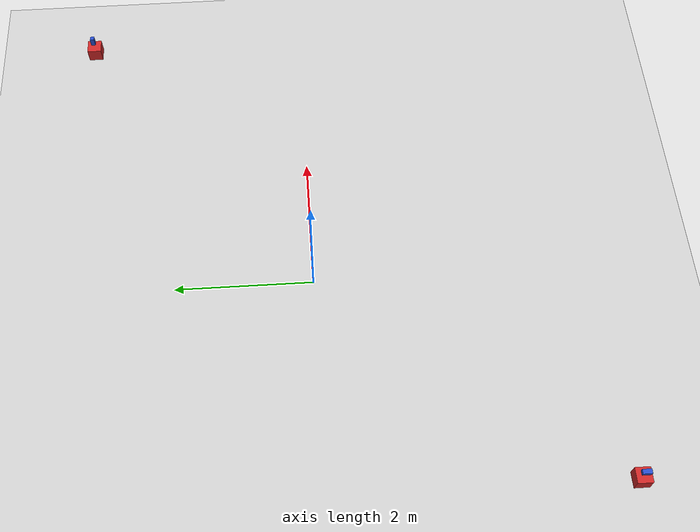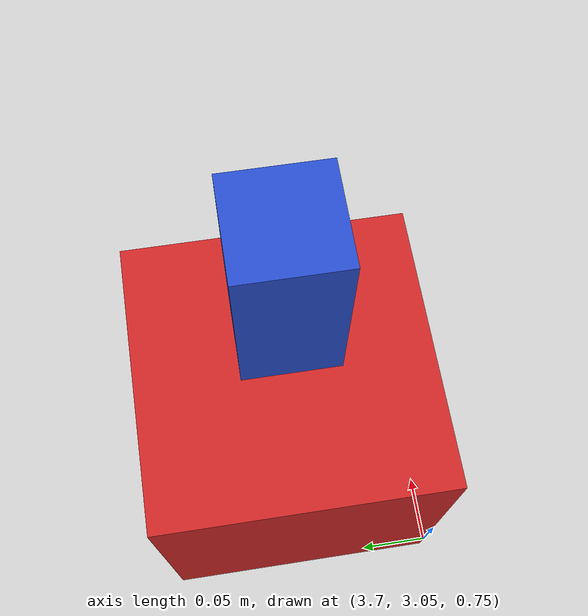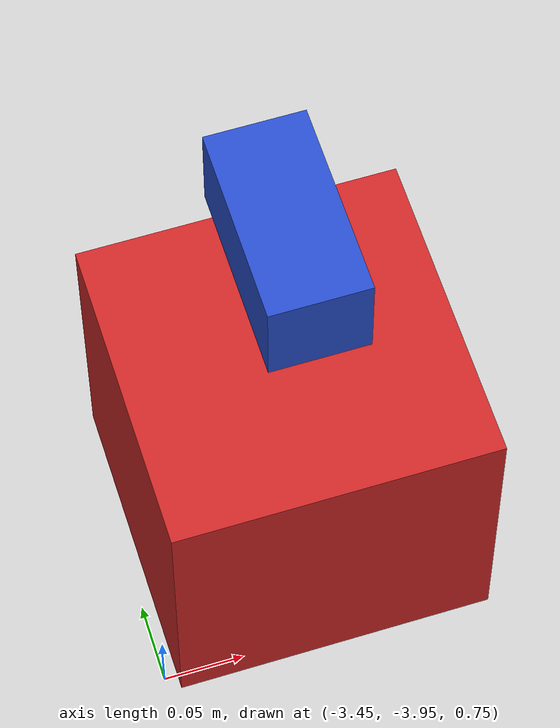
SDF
<sdf version="1.4">
 <world name="default">
  <include><uri>model://ground_plane</uri></include>
  <include><uri>model://sun</uri></include>
  <include><uri>model://distractor_cube</uri><name>dcube1</name><pose>3.8 3.15 0.83 0 0 0</pose></include>
  <include><uri>model://demo_cube</uri><name>cube1</name><pose>3.8 3.15 1.05 0 0 0</pose></include>
  <include><uri>model://distractor_cube</uri><name>dcube2</name><pose>-3.34 -3.85 0.83 1.57 0 0</pose></include>
  <include><uri>model://demo_cube</uri><name>cube2</name><pose>-3.34 -3.85 1.05 1.57 0 0</pose></include>
 </world>
</sdf>

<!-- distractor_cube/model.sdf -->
<sdf version='1.4'>
  <model name="distractor_cube">
      <static>0</static>
      <link name='link'>
        <inertial>
          <mass>0.25</mass>
          <inertia>
            <ixx>0.001</ixx>
            <ixy>0.000000</ixy>
            <ixz>0.000000</ixz>
            <iyy>0.001</iyy>
            <iyz>0.000000</iyz>
            <izz>0.001</izz>
          </inertia>
        </inertial>
        <collision name='collision'>
          <geometry>
            <box>
              <size>0.200 0.200 0.200</size>
            </box>
          </geometry>
          <surface>
            <friction>
              <ode>
                <mu>30.0</mu>
                <mu2>30.0</mu2>
              </ode>
            </friction>
            <contact>
              <ode>
                <kp>1000000.0</kp>
                <kd>100.0</kd>
                <max_vel>1.0</max_vel>
                <min_depth>0.002</min_depth>
              </ode>
            </contact>
          </surface>
        </collision>
        <visual name='visual'>
          <geometry>
            <box>
              <size>0.200 0.200 0.200</size>
            </box>
          </geometry>
          <material>
            <script>
              <uri>file://media/materials/scripts/gazebo.material</uri>
              <name>Gazebo/Red</name>
            </script>
          </material>
        </visual>
        <velocity_decay>
          <linear>0.000000</linear>
          <angular>0.000000</angular>
        </velocity_decay>
        <self_collide>0</self_collide>
        <kinematic>0</kinematic>
        <gravity>0</gravity>
      </link>
  </model>
</sdf>

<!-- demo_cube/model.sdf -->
<sdf version='1.4'>
  <model name="demo_cube">
      <static>0</static>
      <link name='link'>
        <inertial>
          <mass>0.25</mass>
          <inertia>
            <ixx>0.001</ixx>
            <ixy>0.000000</ixy>
            <ixz>0.000000</ixz>
            <iyy>0.001</iyy>
            <iyz>0.000000</iyz>
            <izz>0.001</izz>
          </inertia>
        </inertial>
        <collision name='collision'>
          <geometry>
            <box>
              <size>0.060 0.060 0.120</size>
            </box>
          </geometry>
          <surface>
            <friction>
              <ode>
                <mu>30.0</mu>
                <mu2>30.0</mu2>
              </ode>
            </friction>
            <contact>
              <ode>
                <kp>1000000.0</kp>
                <kd>100.0</kd>
                <max_vel>1.0</max_vel>
                <min_depth>0.002</min_depth>
              </ode>
            </contact>
          </surface>
        </collision>
        <visual name='visual'>
          <geometry>
            <box>
              <size>0.060 0.060 0.120</size>
            </box>
          </geometry>
          <material>
            <script>
              <uri>file://media/materials/scripts/gazebo.material</uri>
              <name>Gazebo/Blue</name>
            </script>
          </material>
        </visual>
        <velocity_decay>
          <linear>0.000000</linear>
          <angular>0.000000</angular>
        </velocity_decay>
        <self_collide>0</self_collide>
        <kinematic>0</kinematic>
        <gravity>1</gravity>
      </link>
  </model>
</sdf>
